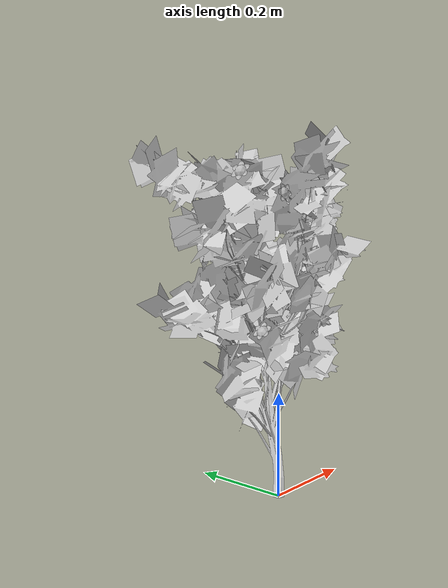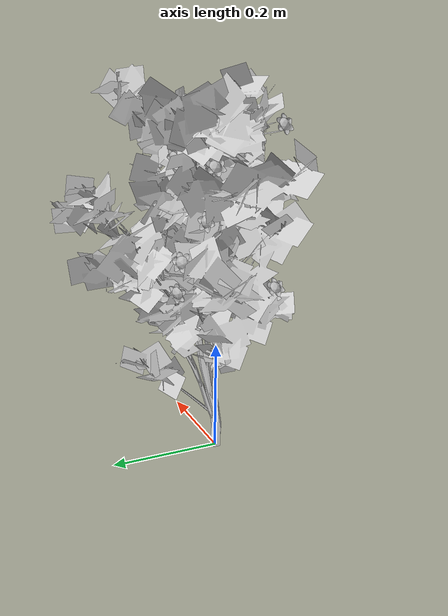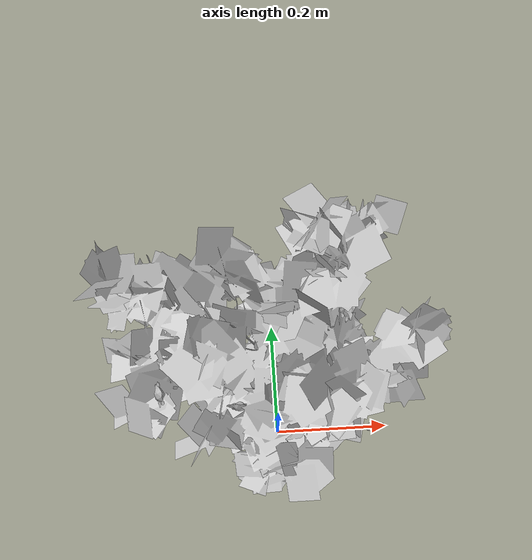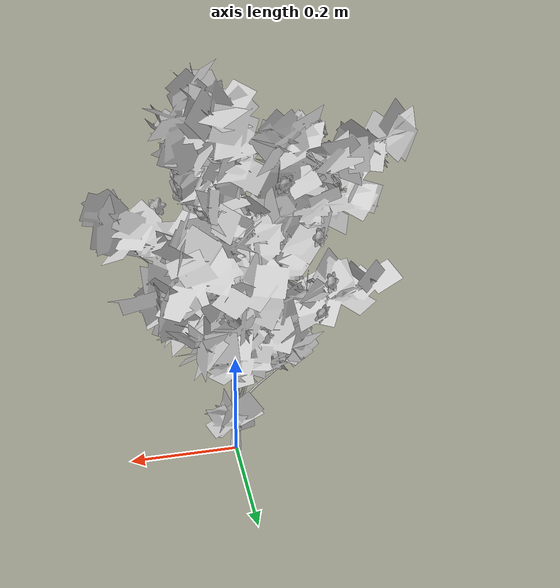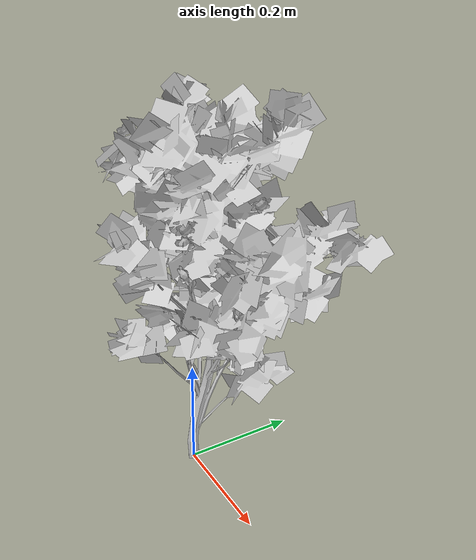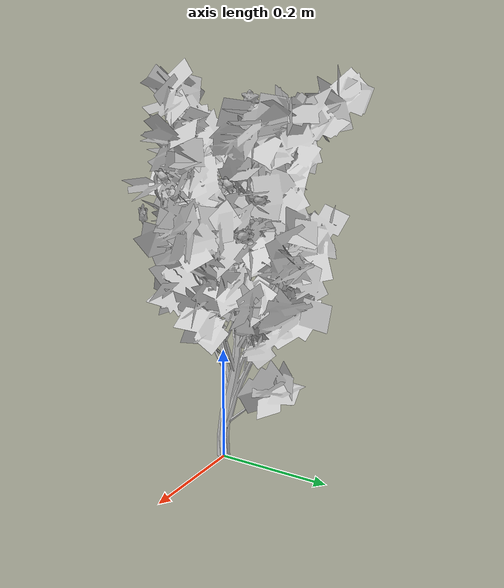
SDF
<?xml version="1.0" ?>
<sdf version="1.6">
  <model name="tree-flowers">
    <!--Skew-Seed:4174534792-->
    <static>true</static>
    <link name="link"/>
    <include>
      <uri>model://tree-mesh</uri>
      <pose>0 0 0 0 0 0</pose>
    </include>
    <joint name="tree_joint" type="fixed">
      <child>tree-mesh::link</child>
      <parent>link</parent>
    </joint>
    <include>
      <name>bramble_0</name>
      <uri>model://bramble</uri>
      <pose> -0.1122868988988385 -0.05432476277056509 0.3298201124822646 -3.2104439926373933 2.1976388441168053 0.0</pose>
    </include>
    <joint name="flower_joint_0" type="fixed">
      <child>bramble_0::flower_link</child>
      <parent>link</parent>
    </joint>
    <include>
      <name>bramble_1</name>
      <uri>model://bramble</uri>
      <pose> 0.1195022584734102 -0.07005302331674955 0.46784954967601 1.2972576566524066 2.3337911400663045 0.0</pose>
    </include>
    <joint name="flower_joint_1" type="fixed">
      <child>bramble_1::flower_link</child>
      <parent>link</parent>
    </joint>
    <include>
      <name>bramble_2</name>
      <uri>model://bramble</uri>
      <pose> -0.05494005339253105 0.09799794141218922 0.5452926709967563 -2.049743701017248 0.8948250115613074 0.0</pose>
    </include>
    <joint name="flower_joint_2" type="fixed">
      <child>bramble_2::flower_link</child>
      <parent>link</parent>
    </joint>
    <include>
      <name>bramble_3</name>
      <uri>model://bramble</uri>
      <pose> 0.06370684655437264 0.08102828013978773 0.4389710576129969 -0.4878147893611684 1.4664142036314445 0.0</pose>
    </include>
    <joint name="flower_joint_3" type="fixed">
      <child>bramble_3::flower_link</child>
      <parent>link</parent>
    </joint>
    <include>
      <name>bramble_4</name>
      <uri>model://bramble</uri>
      <pose> 0.09153803946187875 0.07229053657097463 0.5379723838667012 0.09352233933978094 1.9271595331968827 0.0</pose>
    </include>
    <joint name="flower_joint_4" type="fixed">
      <child>bramble_4::flower_link</child>
      <parent>link</parent>
    </joint>
    <include>
      <name>bramble_5</name>
      <uri>model://bramble</uri>
      <pose> 0.0631558349130364 0.10976523067858548 0.5112669542466439 -0.3961052069009803 2.308334317643981 0.0</pose>
    </include>
    <joint name="flower_joint_5" type="fixed">
      <child>bramble_5::flower_link</child>
      <parent>link</parent>
    </joint>
    <include>
      <name>bramble_6</name>
      <uri>model://bramble</uri>
      <pose> 0.06774285841767129 -0.04761480096125304 0.4895185799970676 0.07366816703347545 1.5583606467004931 0.0</pose>
    </include>
    <joint name="flower_joint_6" type="fixed">
      <child>bramble_6::flower_link</child>
      <parent>link</parent>
    </joint>
    <include>
      <name>bramble_7</name>
      <uri>model://bramble</uri>
      <pose> -0.14203394446451698 0.07072202778706027 0.5315614696506085 -3.158273046192528 2.1312976101053254 0.0</pose>
    </include>
    <joint name="flower_joint_7" type="fixed">
      <child>bramble_7::flower_link</child>
      <parent>link</parent>
    </joint>
    <include>
      <name>bramble_8</name>
      <uri>model://bramble</uri>
      <pose> -0.12731767284627146 0.11572071073346595 0.3900188888538857 -2.2576038549196187 2.0138469896538718 0.0</pose>
    </include>
    <joint name="flower_joint_8" type="fixed">
      <child>bramble_8::flower_link</child>
      <parent>link</parent>
    </joint>
    <include>
      <name>bramble_9</name>
      <uri>model://bramble</uri>
      <pose> 0.06874351683043341 -0.050618251620872204 0.3364741642909623 -0.12126022316923302 1.0513965014363404 0.0</pose>
    </include>
    <joint name="flower_joint_9" type="fixed">
      <child>bramble_9::flower_link</child>
      <parent>link</parent>
    </joint>
    <include>
      <name>bramble_10</name>
      <uri>model://bramble</uri>
      <pose> -0.054702654139976464 -0.0508820634325136 0.5680245973880202 -4.643949270889701 2.1964020759349867 0.0</pose>
    </include>
    <joint name="flower_joint_10" type="fixed">
      <child>bramble_10::flower_link</child>
      <parent>link</parent>
    </joint>
    <include>
      <name>bramble_11</name>
      <uri>model://bramble</uri>
      <pose> -0.11467305569843667 0.11774559253852865 0.34034402108465284 -2.1250571280160617 1.3733210191604868 0.0</pose>
    </include>
    <joint name="flower_joint_11" type="fixed">
      <child>bramble_11::flower_link</child>
      <parent>link</parent>
    </joint>
    <include>
      <name>bramble_12</name>
      <uri>model://bramble</uri>
      <pose> 0.07345892151101777 0.08395340628138849 0.44815438813417435 -0.7641362717585544 2.124921697074379 0.0</pose>
    </include>
    <joint name="flower_joint_12" type="fixed">
      <child>bramble_12::flower_link</child>
      <parent>link</parent>
    </joint>
    <include>
      <name>bramble_13</name>
      <uri>model://bramble</uri>
      <pose> -0.11958409320134984 0.07095979465268712 0.44887580429121277 -2.126158104871444 1.8606637838538924 0.0</pose>
    </include>
    <joint name="flower_joint_13" type="fixed">
      <child>bramble_13::flower_link</child>
      <parent>link</parent>
    </joint>
    <include>
      <name>bramble_14</name>
      <uri>model://bramble</uri>
      <pose> 0.08587438695883098 -0.05490861168431027 0.5261413112887381 0.06583777309577332 1.8538783661851748 0.0</pose>
    </include>
    <joint name="flower_joint_14" type="fixed">
      <child>bramble_14::flower_link</child>
      <parent>link</parent>
    </joint>
    <include>
      <name>bramble_15</name>
      <uri>model://bramble</uri>
      <pose> -0.14934911184078054 -0.038507714673876606 0.593668363843575 -3.3559062397306403 1.9450618754078302 0.0</pose>
    </include>
    <joint name="flower_joint_15" type="fixed">
      <child>bramble_15::flower_link</child>
      <parent>link</parent>
    </joint>
    <include>
      <name>bramble_16</name>
      <uri>model://bramble</uri>
      <pose> 0.07015278159624587 -0.038094241677205376 0.3555018290075402 0.4629796145714429 2.256281014953184 0.0</pose>
    </include>
    <joint name="flower_joint_16" type="fixed">
      <child>bramble_16::flower_link</child>
      <parent>link</parent>
    </joint>
    <include>
      <name>bramble_17</name>
      <uri>model://bramble</uri>
      <pose> 0.059425279730727865 0.05078302407892033 0.37874576835232854 -0.2712804316991463 1.260101642279158 0.0</pose>
    </include>
    <joint name="flower_joint_17" type="fixed">
      <child>bramble_17::flower_link</child>
      <parent>link</parent>
    </joint>
  </model>
</sdf>

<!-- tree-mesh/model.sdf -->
<sdf version="1.6">
  <model name="tree-mesh">
    <static>true</static>
    <link name="link">

      <collision name="collision">
        <geometry>
          <mesh>
            <uri>model://tree-mesh/meshes/new_tree.dae</uri>
            <scale>0.0625 0.0625 0.0625</scale>
          </mesh>
        </geometry>
      </collision>

      <!-- simplified collision for sake of speed since leaves shouldn't be blocking anyway -->

      <visual name="leaves">
        <geometry>
          <mesh>
            <uri>model://tree-mesh/meshes/leaves.dae</uri>
            <scale>0.0325 0.0325 0.0325</scale>
          </mesh>
        </geometry>
        <material>
          <script>
            <uri>model://tree-mesh/materials/scripts/</uri>
            <uri>model://tree-mesh/materials/textures/</uri>
            <name>NewTree/Branch</name>
          </script>
        </material>
      </visual>
      <visual name="bark">
        <geometry>
          <mesh>
            <uri>model://tree-mesh/meshes/bark.dae</uri>
            <scale>0.0325 0.0325 0.0325</scale>
          </mesh>
        </geometry>
        <material>
          <script>
            <uri>model://tree-mesh/materials/scripts/</uri>
            <uri>model://tree-mesh/materials/textures/</uri>
            <name>NewTree/Bark</name>
          </script>
        </material>
      </visual>
    </link>
  </model>
</sdf>

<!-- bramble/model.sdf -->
<sdf version="1.6">
  <model name="bramble">
    <static>true</static>
    <link name="flower_link">
      <collision name="body_collision">
        <geometry>
          <mesh>
            <uri>model://bramble/meshes/bramble.dae</uri>
            <scale>0.2 0.2 0.2</scale>
          </mesh>
        </geometry>
      </collision>
      <visual name="petals">
        <geometry>
          <mesh>
            <uri>model://bramble/meshes/bramble.dae</uri>
            <scale>0.2 0.2 0.2</scale>
            <submesh>
              <name>petal</name>
            </submesh>
          </mesh>
        </geometry>
        <material>
          <script>
            <uri>model://bramble/materials/scripts/</uri>
            <uri>model://bramble/materials/textures/</uri>
            <name>Bramble/Petal</name>
          </script>
        </material>
      </visual>
      <visual name="carpel">
        <geometry>
          <mesh>
            <uri>model://bramble/meshes/bramble.dae</uri>
            <scale>0.2 0.2 0.2</scale>
            <submesh>
              <name>carpel</name>
            </submesh>
          </mesh>
        </geometry>
        <material>
          <script>
            <uri>model://bramble/materials/scripts/</uri>
            <uri>model://bramble/materials/textures/</uri>
            <name>Bramble/Carpel</name>
          </script>
        </material>
      </visual>
      <visual name="stamen">
        <geometry>
          <mesh>
            <uri>model://bramble/meshes/bramble.dae</uri>
            <scale>0.2 0.2 0.2</scale>
            <submesh>
              <name>stamen</name>
            </submesh>
          </mesh>
        </geometry>
        <material>
          <script>
            <uri>model://bramble/materials/scripts/</uri>
            <uri>model://bramble/materials/textures/</uri>
            <name>Bramble/Stamen</name>
          </script>
        </material>
      </visual>
    </link>
  </model>
</sdf>
